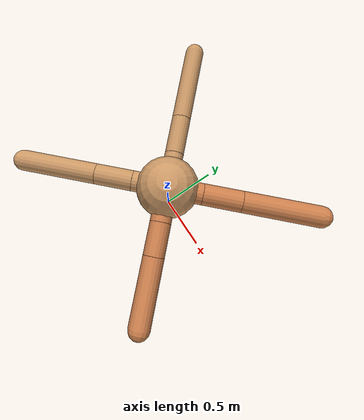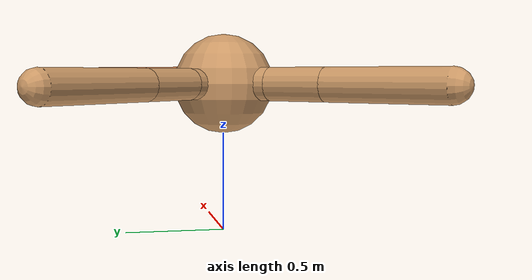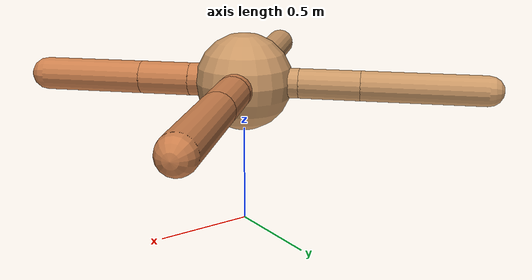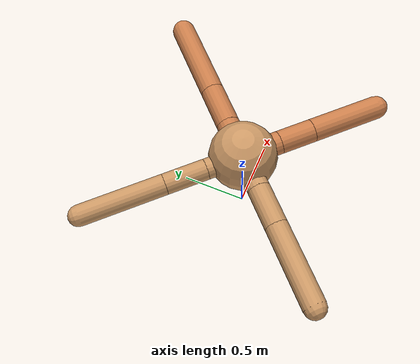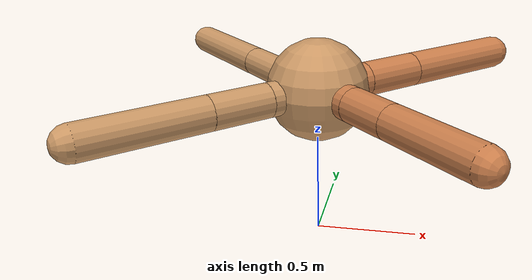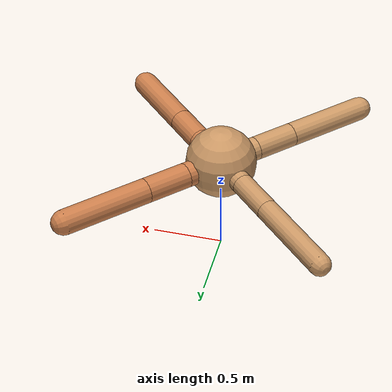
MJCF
<?xml version="1.0" ?>
<mujoco model="ant">

	<compiler angle="degree" coordinate="local" inertiafromgeom="true"/>

	<option integrator="RK4" timestep="0.01"/>

	<custom>

		<numeric data="0.0 0.0 0.55 1.0 0.0 0.0 0.0 0.0 1.0 0.0 -1.0 0.0 -1.0 0.0 1.0" name="init_qpos"/>

	</custom>

	<default>

		<joint armature="1" damping="1" limited="true"/>

		<geom conaffinity="0" condim="3" density="5.0" friction="1.5 0.1 0.1" margin="0.01" rgba="0.8 0.6 0.4 1"/>

	</default>

	<worldbody>

		<body name="torso" pos="0 0 0.75">

			<geom name="torso_geom" pos="0 0 0" size="0.24952680215241238" type="sphere"/>

			<!--joint armature="0" damping="0" limited="false" margin="0.01" name="root" pos="0 0 0" type="free"/-->

			<body name="front_left_leg" pos="0 0 0">

				<geom fromto="0 0 0 0.2 0.2 0" name="aux_1_geom" size="0.08672500712725423" type="capsule" rgba=".8 .5 .3 1"/>

				<body name="aux_1" pos="0.2 0.2 0">

					<joint axis="0 0 1" name="hip_1" pos="0.0 0.0 0.0" range="-40 40" type="hinge"/>

					<geom fromto="0 0 0 0.21979207992891545 0.21979207992891545 0" name="left_leg_geom" size="0.08672500712725423" type="capsule" rgba=".8 .5 .3 1"/>

					<body pos="0.21979207992891545 0.21979207992891545 0" name="front_left_foot">

						<joint axis="-1 1 0" name="ankle_1" pos="0.0 0.0 0.0" range="30 100" type="hinge"/>

						<geom fromto="0 0 0 0.4395841598578309 0.4395841598578309 0" name="left_ankle_geom" size="0.08672500712725423" type="capsule" rgba=".8 .5 .3 1"/>

					</body>

				</body>

			</body>

			<body name="front_right_leg" pos="0 0 0">

				<geom fromto="0 0 0 -0.2 0.2 0" name="aux_2_geom" size="0.07586025543724441" type="capsule"/>

				<body name="aux_2" pos="-0.2 0.2 0">

					<joint axis="0 0 1" name="hip_2" pos="0.0 0.0 0.0" range="-40 40" type="hinge"/>

					<geom fromto="0 0 0 -0.21812831080456646 0.21812831080456646 0" name="right_leg_geom" size="0.07586025543724441" type="capsule"/>

					<body pos="-0.21812831080456646 0.21812831080456646 0" name="front_right_foot">

						<joint axis="1 1 0" name="ankle_2" pos="0.0 0.0 0.0" range="-100 -30" type="hinge"/>

						<geom fromto="0 0 0 -0.4362566216091329 0.4362566216091329 0" name="right_ankle_geom" size="0.07586025543724441" type="capsule"/>

					</body>

				</body>

			</body>

			<body name="left_back_leg" pos="0 0 0">

				<geom fromto="0 0 0 -0.2 -0.2 0" name="aux_3_geom" size="0.08282535398793868" type="capsule"/>

				<body name="aux_3" pos="-0.2 -0.2 0">

					<joint axis="0 0 1" name="hip_3" pos="0.0 0.0 0.0" range="-40 40" type="hinge"/>

					<geom fromto="0 0 0 -0.2099882122716785 -0.2099882122716785 0" name="back_leg_geom" size="0.08282535398793868" type="capsule"/>

					<body pos="-0.2099882122716785 -0.2099882122716785 0" name="left_back_foot">

						<joint axis="-1 1 0" name="ankle_3" pos="0.0 0.0 0.0" range="-100 -30" type="hinge"/>

						<geom fromto="0 0 0 -0.419976424543357 -0.419976424543357 0" name="third_ankle_geom" size="0.08282535398793868" type="capsule"/>

					</body>

				</body>

			</body>

			<body name="right_back_leg" pos="0 0 0">

				<geom fromto="0 0 0 0.2 -0.2 0" name="aux_4_geom" size="0.08455049611730406" type="capsule" rgba=".8 .5 .3 1"/>

				<body name="aux_4" pos="0.2 -0.2 0">

					<joint axis="0 0 1" name="hip_4" pos="0.0 0.0 0.0" range="-40 40" type="hinge"/>

					<geom fromto="0 0 0 0.1854749393680246 -0.1854749393680246 0" name="rightback_leg_geom" size="0.08455049611730406" type="capsule" rgba=".8 .5 .3 1"/>

					<body pos="0.1854749393680246 -0.1854749393680246 0" name="right_back_foot">

						<joint axis="1 1 0" name="ankle_4" pos="0.0 0.0 0.0" range="30 100" type="hinge"/>

						<geom fromto="0 0 0 0.3709498787360492 -0.3709498787360492 0" name="fourth_ankle_geom" size="0.08455049611730406" type="capsule" rgba=".8 .5 .3 1"/>

					</body>

				</body>

			</body>

		</body>

	</worldbody>

	<actuator>

		<motor ctrllimited="true" ctrlrange="-1.0 1.0" joint="hip_4" gear="150"/>

		<motor ctrllimited="true" ctrlrange="-1.0 1.0" joint="ankle_4" gear="150"/>

		<motor ctrllimited="true" ctrlrange="-1.0 1.0" joint="hip_1" gear="150"/>

		<motor ctrllimited="true" ctrlrange="-1.0 1.0" joint="ankle_1" gear="150"/>

		<motor ctrllimited="true" ctrlrange="-1.0 1.0" joint="hip_2" gear="150"/>

		<motor ctrllimited="true" ctrlrange="-1.0 1.0" joint="ankle_2" gear="150"/>

		<motor ctrllimited="true" ctrlrange="-1.0 1.0" joint="hip_3" gear="150"/>

		<motor ctrllimited="true" ctrlrange="-1.0 1.0" joint="ankle_3" gear="150"/>

	</actuator>

</mujoco>
